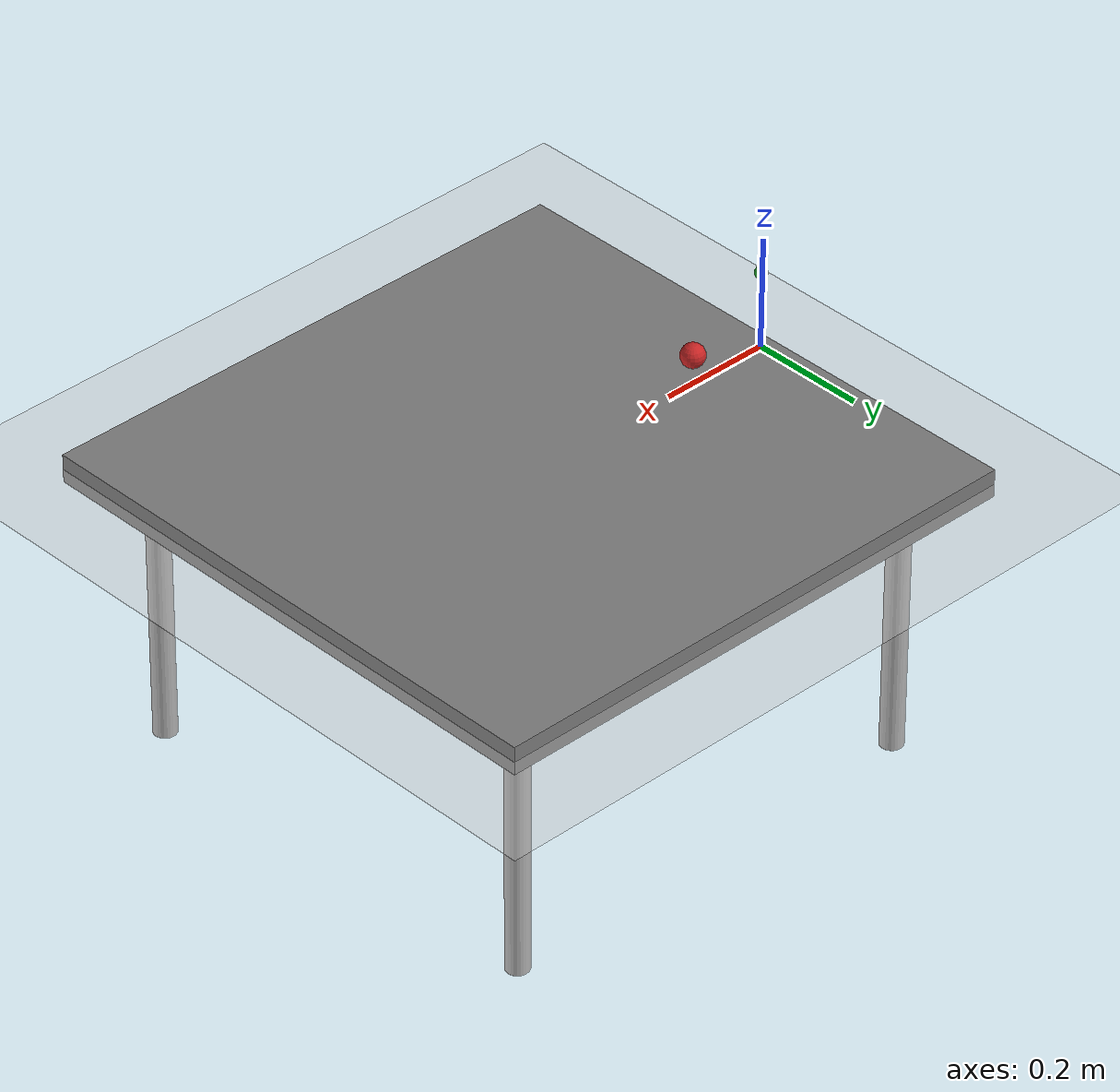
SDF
<?xml version="1.0"?>
<sdf version="1.6">
  <world name="ur5e_tabletop_world">
    <!-- 1) Basic environment: sun and ground plane -->
    <include>
      <uri>model://sun</uri>
    </include>
    <include>
      <uri>model://ground_plane</uri>
    </include>

    <!-- 2) Table for the UR5e robot (unchanged) -->
    <model name="table">
      <static>true</static>
      <pose>0.5 0.0 0.0 0 0 0</pose>
      <link name="table_link">
        <collision name="table_collision">
          <geometry>
            <box>
              <size>1.0 1.0 0.05</size>
            </box>
          </geometry>
        </collision>
        <visual name="table_visual">
          <geometry>
            <box>
              <size>1.0 1.0 0.05</size>
            </box>
          </geometry>
          <material>
            <ambient>0.5 0.5 0.5 1</ambient>
            <diffuse>0.5 0.5 0.5 1</diffuse>
          </material>
        </visual>
        <!-- Table legs -->
        <visual name="leg1_visual">
          <pose>0.4 0.4 -0.25 0 0 0</pose>
          <geometry>
            <cylinder>
              <radius>0.02</radius>
              <length>0.5</length>
            </cylinder>
          </geometry>
        </visual>
        <visual name="leg2_visual">
          <pose>0.4 -0.4 -0.25 0 0 0</pose>
          <geometry>
            <cylinder>
              <radius>0.02</radius>
              <length>0.5</length>
            </cylinder>
          </geometry>
        </visual>
        <visual name="leg3_visual">
          <pose>-0.4 0.4 -0.25 0 0 0</pose>
          <geometry>
            <cylinder>
              <radius>0.02</radius>
              <length>0.5</length>
            </cylinder>
          </geometry>
        </visual>
        <visual name="leg4_visual">
          <pose>-0.4 -0.4 -0.25 0 0 0</pose>
          <geometry>
            <cylinder>
              <radius>0.02</radius>
              <length>0.5</length>
            </cylinder>
          </geometry>
        </visual>
      </link>
    </model>

    <!-- 3) Target sphere (Green) from second snippet
         Pose: (0.515, 0.5, 0.624)
         Radius: 0.01
    -->
    <model name="Target">
      <static>true</static>
      <pose>0.515 0.5 0.624 0 0 0</pose>
      <link name="link">
        <collision name="collision">
          <geometry>
            <sphere>
              <radius>0.01</radius>
            </sphere>
          </geometry>
        </collision>
        <visual name="visual">
          <geometry>
            <sphere>
              <radius>0.01</radius>
            </sphere>
          </geometry>
          <material>
            <script>
              <uri>file://media/materials/scripts/gazebo.material</uri>
              <name>Gazebo/Green</name>
            </script>
          </material>
        </visual>
      </link>
    </model>

    <!-- 4) Obstacle (Red sphere) from second snippet
         Pose: (0.4, 0.25, 0.3)
         Radius: 0.02
    -->
    <model name="Obstacle">
      <pose>0.4 0.25 0.3 0 0 0</pose>
      <static>true</static>
      <link name="link">
        <collision name="collision">
          <geometry>
            <sphere>
              <radius>0.02</radius>
            </sphere>
          </geometry>
          <max_contacts>1</max_contacts>
        </collision>
        <visual name="visual">
          <geometry>
            <sphere>
              <radius>0.02</radius>
            </sphere>
          </geometry>
          <material>
            <script>
              <uri>file://media/materials/scripts/gazebo.material</uri>
              <name>Gazebo/Red</name>
            </script>
          </material>
        </visual>
      </link>
    </model>

  </world>
</sdf>
